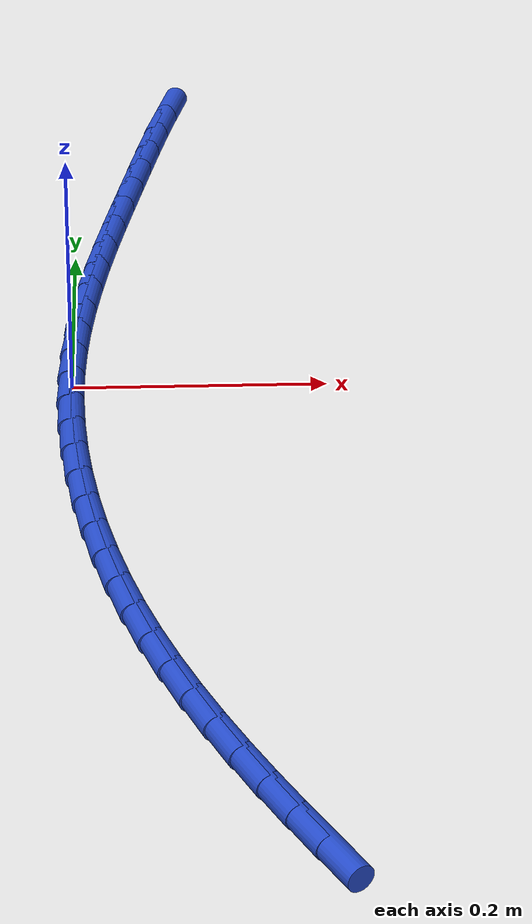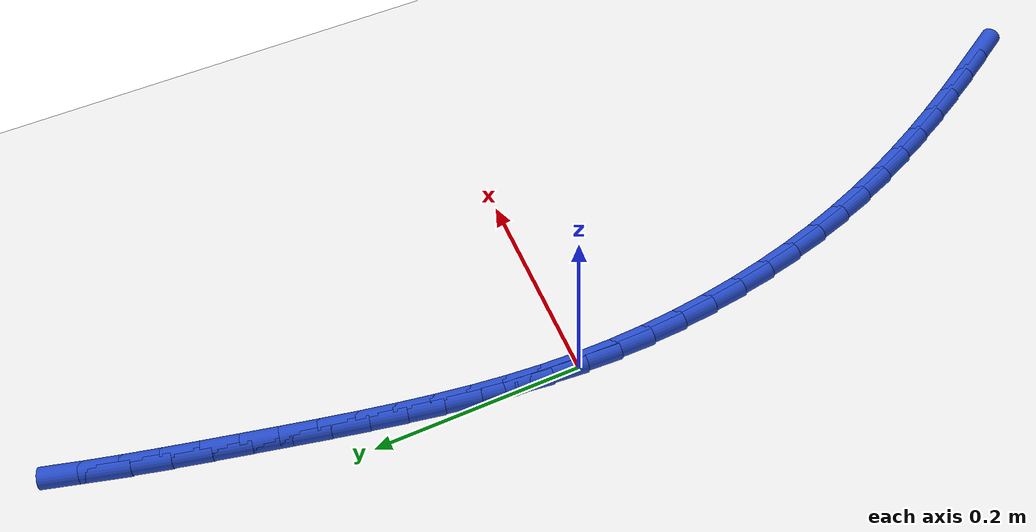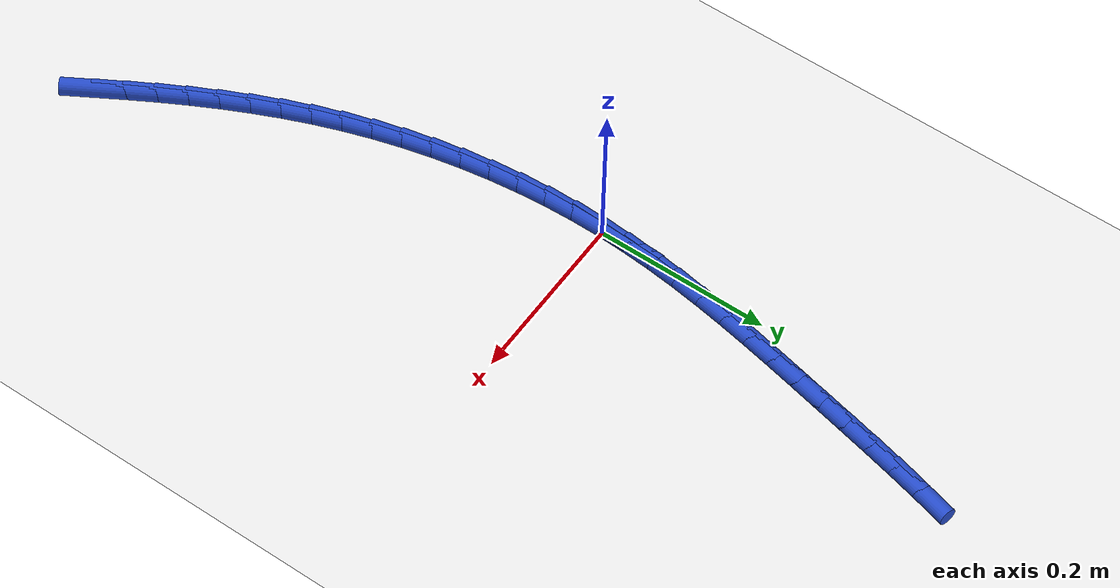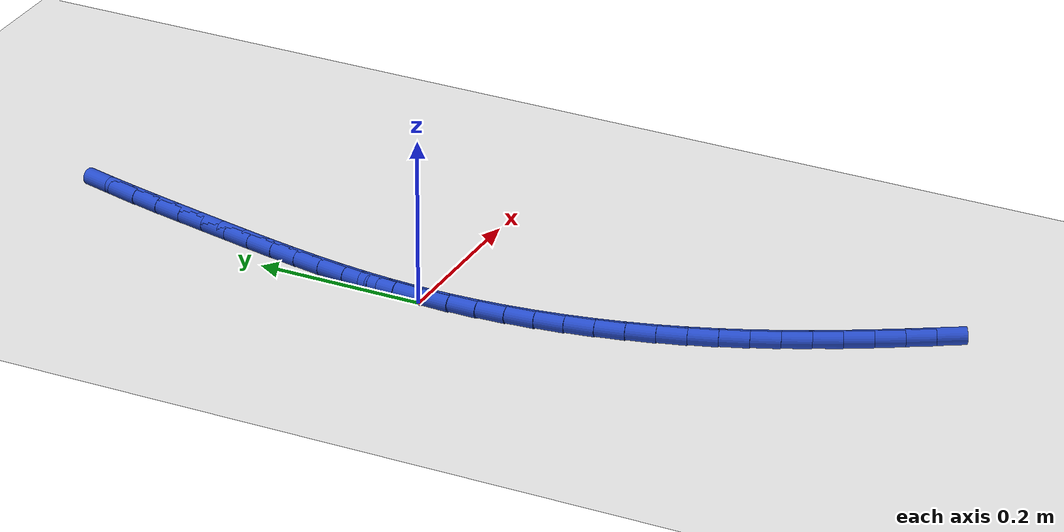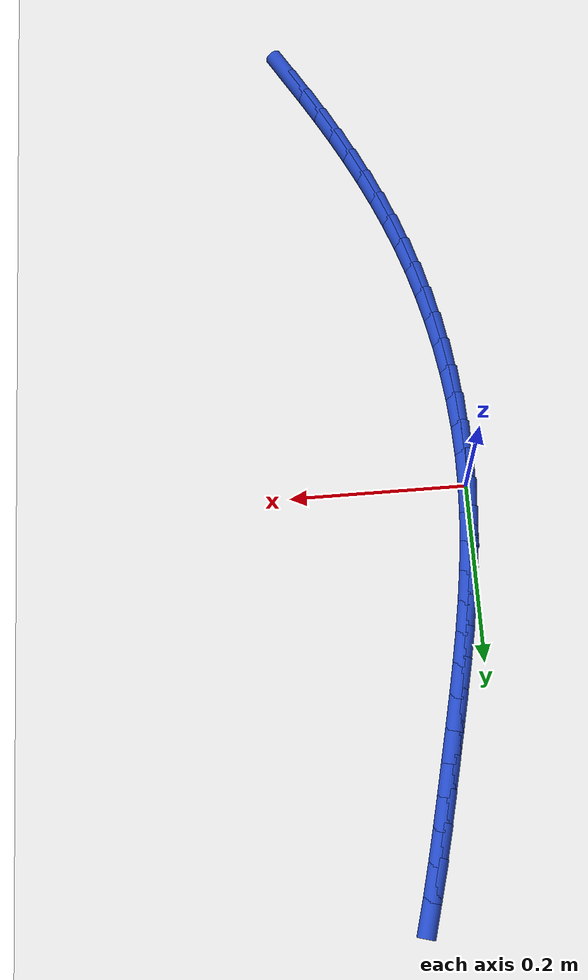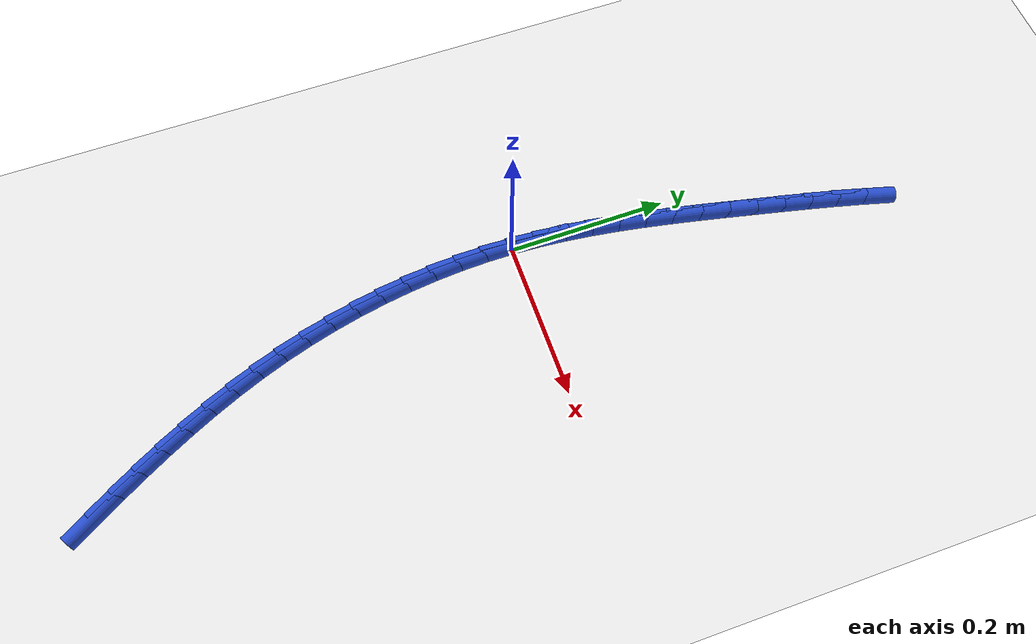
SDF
<sdf version="1.6">
 <world name="default">
  <model name="ground_plane">
   <static>1</static>
   <link name="link">
    <collision name="collision">
     <geometry><plane><normal>0 0 1</normal><size>100 100</size></plane></geometry>
     <surface><friction><ode><mu>100</mu><mu2>50</mu2></ode></friction></surface>
    </collision>
    <visual name="visual">
     <cast_shadows>0</cast_shadows>
     <geometry><plane><normal>0 0 1</normal><size>100 100</size></plane></geometry>
     <material>
      <script><uri>file://media/materials/scripts/gazebo.material</uri><name>Gazebo/WhiteGlow</name></script>
     </material>
    </visual>
   </link>
  </model>
  <model name="line">
   <link name="link_0">
    <pose>1.3877787807814457e-17 -4.163336342344337e-17 0.01 0 1.57 1.5237938929489383</pose>
    <collision name="collision">
     <geometry><cylinder><radius>0.01</radius><length>0.08</length></cylinder></geometry>
    </collision>
    <visual name="visual">
     <material>
      <script><name>Gazebo/Blue</name><uri>file://media/materials/scripts/gazebo.material</uri></script>
     </material>
     <geometry><cylinder><radius>0.01</radius><length>0.08</length></cylinder></geometry>
    </visual>
   </link>
   <link name="link_1">
    <pose>0.0015833553322793805 0.03366185605702555 0.01 0 1.57 1.4860514094822226</pose>
    <collision name="collision">
     <geometry><cylinder><radius>0.01</radius><length>0.08</length></cylinder></geometry>
    </collision>
    <visual name="visual">
     <material>
      <script><name>Gazebo/Blue</name><uri>file://media/materials/scripts/gazebo.material</uri></script>
     </material>
     <geometry><cylinder><radius>0.01</radius><length>0.08</length></cylinder></geometry>
    </visual>
   </link>
   <link name="link_2">
    <pose>0.004429879619002589 0.06717072970445973 0.01 0 1.57 1.4527619541786687</pose>
    <collision name="collision">
     <geometry><cylinder><radius>0.01</radius><length>0.08</length></cylinder></geometry>
    </collision>
    <visual name="visual">
     <material>
      <script><name>Gazebo/Blue</name><uri>file://media/materials/scripts/gazebo.material</uri></script>
     </material>
     <geometry><cylinder><radius>0.01</radius><length>0.08</length></cylinder></geometry>
    </visual>
   </link>
   <link name="link_3">
    <pose>0.008391074995483631 0.10057440898370419 0.01 0 1.57 1.4240941859864407</pose>
    <collision name="collision">
     <geometry><cylinder><radius>0.01</radius><length>0.08</length></cylinder></geometry>
    </collision>
    <visual name="visual">
     <material>
      <script><name>Gazebo/Blue</name><uri>file://media/materials/scripts/gazebo.material</uri></script>
     </material>
     <geometry><cylinder><radius>0.01</radius><length>0.08</length></cylinder></geometry>
    </visual>
   </link>
   <link name="link_4">
    <pose>0.013318443597036525 0.1339206819361608 0.01 0 1.57 1.400138462734256</pose>
    <collision name="collision">
     <geometry><cylinder><radius>0.01</radius><length>0.08</length></cylinder></geometry>
    </collision>
    <visual name="visual">
     <material>
      <script><name>Gazebo/Blue</name><uri>file://media/materials/scripts/gazebo.material</uri></script>
     </material>
     <geometry><cylinder><radius>0.01</radius><length>0.08</length></cylinder></geometry>
    </visual>
   </link>
   <link name="link_5">
    <pose>0.019063487558975245 0.16725733660323117 0.01 0 1.57 1.3809240227589556</pose>
    <collision name="collision">
     <geometry><cylinder><radius>0.01</radius><length>0.08</length></cylinder></geometry>
    </collision>
    <visual name="visual">
     <material>
      <script><name>Gazebo/Blue</name><uri>file://media/materials/scripts/gazebo.material</uri></script>
     </material>
     <geometry><cylinder><radius>0.01</radius><length>0.08</length></cylinder></geometry>
    </visual>
   </link>
   <link name="link_6">
    <pose>0.025477709016613812 0.2006321610263172 0.01 0 1.57 1.3664350193207166</pose>
    <collision name="collision">
     <geometry><cylinder><radius>0.01</radius><length>0.08</length></cylinder></geometry>
    </collision>
    <visual name="visual">
     <material>
      <script><name>Gazebo/Blue</name><uri>file://media/materials/scripts/gazebo.material</uri></script>
     </material>
     <geometry><cylinder><radius>0.01</radius><length>0.08</length></cylinder></geometry>
    </visual>
   </link>
   <link name="link_7">
    <pose>0.03241261010526623 0.23409294324682067 0.01 0 1.57 1.356624095651733</pose>
    <collision name="collision">
     <geometry><cylinder><radius>0.01</radius><length>0.08</length></cylinder></geometry>
    </collision>
    <visual name="visual">
     <material>
      <script><name>Gazebo/Blue</name><uri>file://media/materials/scripts/gazebo.material</uri></script>
     </material>
     <geometry><cylinder><radius>0.01</radius><length>0.08</length></cylinder></geometry>
    </visual>
   </link>
   <link name="link_8">
    <pose>0.03971969296024647 0.26768747130614323 0.01 0 1.57 1.3514228529556096</pose>
    <collision name="collision">
     <geometry><cylinder><radius>0.01</radius><length>0.08</length></cylinder></geometry>
    </collision>
    <visual name="visual">
     <material>
      <script><name>Gazebo/Blue</name><uri>file://media/materials/scripts/gazebo.material</uri></script>
     </material>
     <geometry><cylinder><radius>0.01</radius><length>0.08</length></cylinder></geometry>
    </visual>
   </link>
   <link name="link_9">
    <pose>0.04725045971686853 0.3014635332456866 0.01 0 1.57 1.3500065095173566</pose>
    <collision name="collision">
     <geometry><cylinder><radius>0.01</radius><length>0.08</length></cylinder></geometry>
    </collision>
    <visual name="visual">
     <material>
      <script><name>Gazebo/Blue</name><uri>file://media/materials/scripts/gazebo.material</uri></script>
     </material>
     <geometry><cylinder><radius>0.01</radius><length>0.08</length></cylinder></geometry>
    </visual>
   </link>
   <link name="link_10">
    <pose>0.05487967655711953 0.33545442156473815 0.01 0 1.57 1.3464245933959476</pose>
    <collision name="collision">
     <geometry><cylinder><radius>0.01</radius><length>0.08</length></cylinder></geometry>
    </collision>
    <visual name="visual">
     <material>
      <script><name>Gazebo/Blue</name><uri>file://media/materials/scripts/gazebo.material</uri></script>
     </material>
     <geometry><cylinder><radius>0.01</radius><length>0.08</length></cylinder></geometry>
    </visual>
   </link>
   <link name="link_11">
    <pose>0.0626671893206778 0.3695781078981471 0.01 0 1.57 1.3378747662530512</pose>
    <collision name="collision">
     <geometry><cylinder><radius>0.01</radius><length>0.08</length></cylinder></geometry>
    </collision>
    <visual name="visual">
     <material>
      <script><name>Gazebo/Blue</name><uri>file://media/materials/scripts/gazebo.material</uri></script>
     </material>
     <geometry><cylinder><radius>0.01</radius><length>0.08</length></cylinder></geometry>
    </visual>
   </link>
   <link name="link_12">
    <pose>0.07076123481008033 0.4036974885560495 0.01 0 1.57 1.3242959916823867</pose>
    <collision name="collision">
     <geometry><cylinder><radius>0.01</radius><length>0.08</length></cylinder></geometry>
    </collision>
    <visual name="visual">
     <material>
      <script><name>Gazebo/Blue</name><uri>file://media/materials/scripts/gazebo.material</uri></script>
     </material>
     <geometry><cylinder><radius>0.01</radius><length>0.08</length></cylinder></geometry>
    </visual>
   </link>
   <link name="link_13">
    <pose>0.07931059750249457 0.4376751185992369 0.01 0 1.57 1.305567013321524</pose>
    <collision name="collision">
     <geometry><cylinder><radius>0.01</radius><length>0.08</length></cylinder></geometry>
    </collision>
    <visual name="visual">
     <material>
      <script><name>Gazebo/Blue</name><uri>file://media/materials/scripts/gazebo.material</uri></script>
     </material>
     <geometry><cylinder><radius>0.01</radius><length>0.08</length></cylinder></geometry>
    </visual>
   </link>
   <link name="link_183">
    <pose>0.16508017050901425 -0.5455966308946181 0.01 0 1.57 -1.035820164921019</pose>
    <collision name="collision">
     <geometry><cylinder><radius>0.01</radius><length>0.08</length></cylinder></geometry>
    </collision>
    <visual name="visual">
     <material>
      <script><name>Gazebo/Blue</name><uri>file://media/materials/scripts/gazebo.material</uri></script>
     </material>
     <geometry><cylinder><radius>0.01</radius><length>0.08</length></cylinder></geometry>
    </visual>
   </link>
   <link name="link_184">
    <pose>0.14767557046396348 -0.5162277804725902 0.01 0 1.57 -1.05250715491091</pose>
    <collision name="collision">
     <geometry><cylinder><radius>0.01</radius><length>0.08</length></cylinder></geometry>
    </collision>
    <visual name="visual">
     <material>
      <script><name>Gazebo/Blue</name><uri>file://media/materials/scripts/gazebo.material</uri></script>
     </material>
     <geometry><cylinder><radius>0.01</radius><length>0.08</length></cylinder></geometry>
    </visual>
   </link>
   <link name="link_185">
    <pose>0.1308072094050921 -0.4866493361034949 0.01 0 1.57 -1.0726038812506888</pose>
    <collision name="collision">
     <geometry><cylinder><radius>0.01</radius><length>0.08</length></cylinder></geometry>
    </collision>
    <visual name="visual">
     <material>
      <script><name>Gazebo/Blue</name><uri>file://media/materials/scripts/gazebo.material</uri></script>
     </material>
     <geometry><cylinder><radius>0.01</radius><length>0.08</length></cylinder></geometry>
    </visual>
   </link>
   <link name="link_186">
    <pose>0.1145753994838669 -0.4568091348617098 0.01 0 1.57 -1.0961236095564675</pose>
    <collision name="collision">
     <geometry><cylinder><radius>0.01</radius><length>0.08</length></cylinder></geometry>
    </collision>
    <visual name="visual">
     <material>
      <script><name>Gazebo/Blue</name><uri>file://media/materials/scripts/gazebo.material</uri></script>
     </material>
     <geometry><cylinder><radius>0.01</radius><length>0.08</length></cylinder></geometry>
    </visual>
   </link>
   <link name="link_187">
    <pose>0.09908045285175432 -0.42665501382161286 0.01 0 1.57 -1.1230613820223339</pose>
    <collision name="collision">
     <geometry><cylinder><radius>0.01</radius><length>0.08</length></cylinder></geometry>
    </collision>
    <visual name="visual">
     <material>
      <script><name>Gazebo/Blue</name><uri>file://media/materials/scripts/gazebo.material</uri></script>
     </material>
     <geometry><cylinder><radius>0.01</radius><length>0.08</length></cylinder></geometry>
    </visual>
   </link>
   <link name="link_188">
    <pose>0.08442268166022104 -0.39613481005758167 0.01 0 1.57 -1.1533857478369252</pose>
    <collision name="collision">
     <geometry><cylinder><radius>0.01</radius><length>0.08</length></cylinder></geometry>
    </collision>
    <visual name="visual">
     <material>
      <script><name>Gazebo/Blue</name><uri>file://media/materials/scripts/gazebo.material</uri></script>
     </material>
     <geometry><cylinder><radius>0.01</radius><length>0.08</length></cylinder></geometry>
    </visual>
   </link>
   <link name="link_189">
    <pose>0.0707023980607337 -0.36519636064399436 0.01 0 1.57 -1.187029691936328</pose>
    <collision name="collision">
     <geometry><cylinder><radius>0.01</radius><length>0.08</length></cylinder></geometry>
    </collision>
    <visual name="visual">
     <material>
      <script><name>Gazebo/Blue</name><uri>file://media/materials/scripts/gazebo.material</uri></script>
     </material>
     <geometry><cylinder><radius>0.01</radius><length>0.08</length></cylinder></geometry>
    </visual>
   </link>
   <link name="link_190">
    <pose>0.05801991420475881 -0.3337875026552284 0.01 0 1.57 -1.2238748169007432</pose>
    <collision name="collision">
     <geometry><cylinder><radius>0.01</radius><length>0.08</length></cylinder></geometry>
    </collision>
    <visual name="visual">
     <material>
      <script><name>Gazebo/Blue</name><uri>file://media/materials/scripts/gazebo.material</uri></script>
     </material>
     <geometry><cylinder><radius>0.01</radius><length>0.08</length></cylinder></geometry>
    </visual>
   </link>
   <link name="link_191">
    <pose>0.046475396510866754 -0.30185632185202227 0.01 0 1.57 -1.2627423403900189</pose>
    <collision name="collision">
     <geometry><cylinder><radius>0.01</radius><length>0.08</length></cylinder></geometry>
    </collision>
    <visual name="visual">
     <material>
      <script><name>Gazebo/Blue</name><uri>file://media/materials/scripts/gazebo.material</uri></script>
     </material>
     <geometry><cylinder><radius>0.01</radius><length>0.08</length></cylinder></geometry>
    </visual>
   </link>
   <link name="link_192">
    <pose>0.0361454910986969 -0.26939104028336275 0.01 0 1.57 -1.3015003656528832</pose>
    <collision name="collision">
     <geometry><cylinder><radius>0.01</radius><length>0.08</length></cylinder></geometry>
    </collision>
    <visual name="visual">
     <material>
      <script><name>Gazebo/Blue</name><uri>file://media/materials/scripts/gazebo.material</uri></script>
     </material>
     <geometry><cylinder><radius>0.01</radius><length>0.08</length></cylinder></geometry>
    </visual>
   </link>
   <link name="link_193">
    <pose>0.027057595513891516 -0.23646392038256484 0.01 0 1.57 -1.3400487403476857</pose>
    <collision name="collision">
     <geometry><cylinder><radius>0.01</radius><length>0.08</length></cylinder></geometry>
    </collision>
    <visual name="visual">
     <material>
      <script><name>Gazebo/Blue</name><uri>file://media/materials/scripts/gazebo.material</uri></script>
     </material>
     <geometry><cylinder><radius>0.01</radius><length>0.08</length></cylinder></geometry>
    </visual>
   </link>
   <link name="link_194">
    <pose>0.019232916880421513 -0.2031577882475207 0.01 0 1.57 -1.3785627718076194</pose>
    <collision name="collision">
     <geometry><cylinder><radius>0.01</radius><length>0.08</length></cylinder></geometry>
    </collision>
    <visual name="visual">
     <material>
      <script><name>Gazebo/Blue</name><uri>file://media/materials/scripts/gazebo.material</uri></script>
     </material>
     <geometry><cylinder><radius>0.01</radius><length>0.08</length></cylinder></geometry>
    </visual>
   </link>
   <link name="link_195">
    <pose>0.012692662322257523 -0.16955546997612173 0.01 0 1.57 -1.4172166007424898</pose>
    <collision name="collision">
     <geometry><cylinder><radius>0.01</radius><length>0.08</length></cylinder></geometry>
    </collision>
    <visual name="visual">
     <material>
      <script><name>Gazebo/Blue</name><uri>file://media/materials/scripts/gazebo.material</uri></script>
     </material>
     <geometry><cylinder><radius>0.01</radius><length>0.08</length></cylinder></geometry>
    </visual>
   </link>
   <link name="link_196">
    <pose>0.007458038963370175 -0.1357397916662591 0.01 0 1.57 -1.4561838600888142</pose>
    <collision name="collision">
     <geometry><cylinder><radius>0.01</radius><length>0.08</length></cylinder></geometry>
    </collision>
    <visual name="visual">
     <material>
      <script><name>Gazebo/Blue</name><uri>file://media/materials/scripts/gazebo.material</uri></script>
     </material>
     <geometry><cylinder><radius>0.01</radius><length>0.08</length></cylinder></geometry>
    </visual>
   </link>
   <link name="link_197">
    <pose>0.0035502539277301095 -0.10179357941582431 0.01 0 1.57 -1.495638239723209</pose>
    <collision name="collision">
     <geometry><cylinder><radius>0.01</radius><length>0.08</length></cylinder></geometry>
    </collision>
    <visual name="visual">
     <material>
      <script><name>Gazebo/Blue</name><uri>file://media/materials/scripts/gazebo.material</uri></script>
     </material>
     <geometry><cylinder><radius>0.01</radius><length>0.08</length></cylinder></geometry>
    </visual>
   </link>
   <link name="link_198">
    <pose>0.0009905143393079694 -0.06779965932270869 0.01 0 1.57 -1.5357538748397945</pose>
    <collision name="collision">
     <geometry><cylinder><radius>0.01</radius><length>0.08</length></cylinder></geometry>
    </collision>
    <visual name="visual">
     <material>
      <script><name>Gazebo/Blue</name><uri>file://media/materials/scripts/gazebo.material</uri></script>
     </material>
     <geometry><cylinder><radius>0.01</radius><length>0.08</length></cylinder></geometry>
    </visual>
   </link>
   <link name="link_199">
    <pose>-0.0001999726779256068 -0.033840857484803526 0.01 0 1.57 1.564887187215145</pose>
    <collision name="collision">
     <geometry><cylinder><radius>0.01</radius><length>0.08</length></cylinder></geometry>
    </collision>
    <visual name="visual">
     <material>
      <script><name>Gazebo/Blue</name><uri>file://media/materials/scripts/gazebo.material</uri></script>
     </material>
     <geometry><cylinder><radius>0.01</radius><length>0.08</length></cylinder></geometry>
    </visual>
   </link>
   <link name="link_200">
    <pose>2.2551405187698492e-17 -2.1510571102112408e-16 0.01 0 1.57 1.5229246261052234</pose>
    <collision name="collision">
     <geometry><cylinder><radius>0.01</radius><length>0.08</length></cylinder></geometry>
    </collision>
    <visual name="visual">
     <material>
      <script><name>Gazebo/Blue</name><uri>file://media/materials/scripts/gazebo.material</uri></script>
     </material>
     <geometry><cylinder><radius>0.01</radius><length>0.08</length></cylinder></geometry>
    </visual>
   </link>
   <link name="link_201">
    <pose>0.0016116394970555458 0.03364008703381063 0.01 0 1.57 1.522924626105223</pose>
    <collision name="collision">
     <geometry><cylinder><radius>0.01</radius><length>0.08</length></cylinder></geometry>
    </collision>
    <visual name="visual">
     <material>
      <script><name>Gazebo/Blue</name><uri>file://media/materials/scripts/gazebo.material</uri></script>
     </material>
     <geometry><cylinder><radius>0.01</radius><length>0.08</length></cylinder></geometry>
    </visual>
   </link>
  </model>
 </world>
</sdf>
